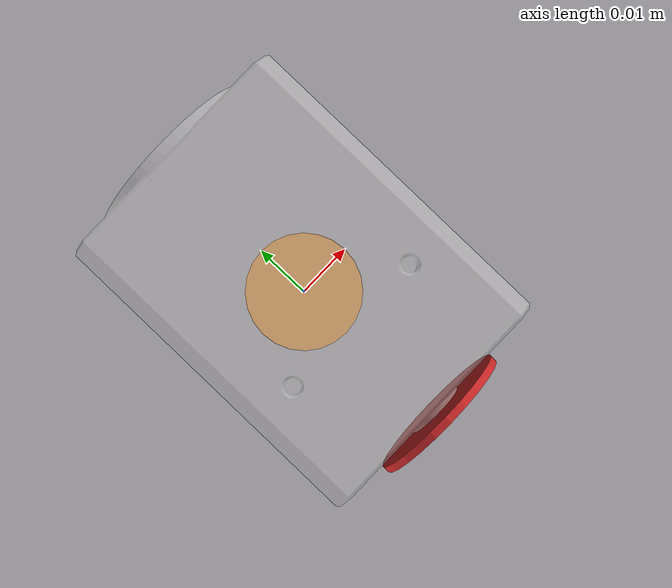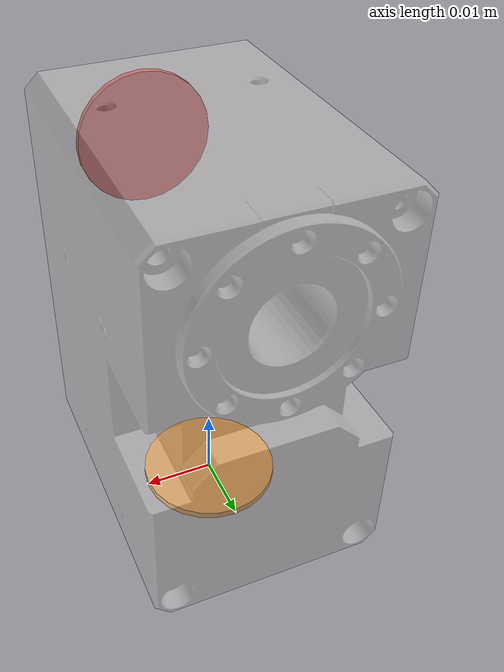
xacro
<?xml version="1.0"?>
<robot name="my_robo" xmlns:xacro="http://ros.org/wiki/xacro">\
	<xacro:include filename="$(find dynamixel_description)/urdf/_XM540.urdf.xacro"/>
	<xacro:include filename="$(find dynamixel_description)/urdf/common_properties.xacro"/>

	<link name="base">
		<visual>
			<origin xyz="0 0 0" rpy="0 0 0"/>
			<geometry>
				<cylinder length="0.001" radius="0.01"/>
			</geometry>
			<material name="orange"/>
		</visual>
	</link>

	<xacro:servo_XM540 parent="base" child="hone" center_child="false" />

	<link name="hone">
		<visual>
			<origin xyz="0 0 0" rpy="0 0 0"/>
			<geometry>
				<cylinder length="0.001" radius="0.01"/>
			</geometry>
			<material name="red"/>
		</visual>
	</link>

	<gazebo reference="base">
		<material>Gazebo/Orange</material>
	</gazebo>

	<gazebo reference="hone">
		<material>Gazebo/Red</material>
	</gazebo>

</robot>

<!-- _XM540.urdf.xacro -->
<!-- あとでdynamixel descriptionを作ってそこにれる -->
<robot name=" dynamixel-XM540" xmlns:xacro="http://ros.org/wiki/xacro">\
	<xacro:macro name="servo_XM540" params="parent child fixed_plane:=bottom center_child:=false">
	   <xacro:include filename="$(find dynamixel_description)/urdf/_XM540.gazebo.xacro"/>

		<xacro:property name="path_to_mesh" value="meshes/XM540-W150-R.dae" />
		<xacro:property name="visual_origin"> <origin xyz="${0} ${0.0386} ${0}" rpy="${-pi/2} 0 ${pi}" /> </xacro:property>
		<xacro:property name="L_x_hone" value="${ 0.0/1000}" /> <!-- unit [m] --> <!-- converted from [mm] -->
		<xacro:property name="L_y_hone" value="${15.5/1000}" /> <!-- unit [m] --> <!-- converted from [mm] -->
		<xacro:property name="L_z_hone" value="${24.5/1000}" /> <!-- unit [m] --> <!-- converted from [mm] -->
		<xacro:property name="W_x" value="${33.5/1000}" /> <!-- unit [m] --> <!-- converted from [mm] -->
		<xacro:property name="W_y" value="${58.5/1000}" /> <!-- unit [m] --> <!-- converted from [mm] -->
		<xacro:property name="W_z" value="${44.0/1000}" /> <!-- unit [m] --> <!-- converted from [mm] -->
		<xacro:property name="no_load_speed" value="${66*(2*pi/60)}" /> <!-- unit [rad/sec] --> <!-- converted from [rev/min] -->
		<xacro:property name="stall_torque"  value="${8.9}" /> <!-- unit [Nm] -->
		<xacro:property name="mass"  value="${165/1000}" /> <!-- unit [kg] --> <!-- converted from [g] -->
		<xacro:property name="inertia"> <!-- unit [kg*m^@] --> <!-- converted from [g*mm^2] -->
			<inertia ixx="${72456.754/1000000000}"  ixy="${-128.62012/1000000000}" ixz="${-174.27089/1000000000}"
			                                        iyy="${ 38622.228/1000000000}" iyz="${-8272.2282/1000000000}"
			                                                                       izz="${ 60707.131/1000000000}" />
		</xacro:property>

		<joint name="XM540_base_joint_" type="fixed">
			<parent link="${parent}"/>
			<child link="dynx_XM540"/>
			<xacro:if value="${fixed_plane == 'bottom'}">
				<origin xyz="${0} ${0} ${W_y/2}" rpy="${pi/2} ${0} ${0}"/> <!-- 回転が先 -->
			</xacro:if>
			<xacro:if value="${fixed_plane == 'top'}">
				<origin xyz="${0} ${0} ${-W_y/2}" rpy="${pi/2} ${0} ${0}"/> <!-- 回転が先 -->
			</xacro:if>
		</joint>

		<link name="dynx_XM540">
			<inertial>
				<origin xyz="0 0 0" rpy="0 0 0"/>
				<mass value="${mass}"/>
				<xacro:insert_block name="inertia"/>
			</inertial>
			<visual>
				<xacro:insert_block name="visual_origin"/>
				<geometry>
					<mesh filename="package://dynamixel_description/${path_to_mesh}" />
				</geometry>
				<material name="gray">
					<color rgba="0.8 0.8 0.8 0.5"/>
				</material>
			</visual>
			<collision>
				<origin xyz="0 0 0" rpy="0 0 0"/>
				<geometry>
					<box size="${W_x} ${W_y} ${W_z}"/>
				</geometry>
			</collision>
		</link>

		<joint name="${child}_joint" type="fixed">
			<parent link="dynx_XM540"/>
			<child link="dynx_XM540_hone"/>
			<origin xyz="${L_x_hone} ${L_y_hone} ${L_z_hone}" rpy="0 0 0"/>
			<axis xyz="0 0 1"/>
			<dynamics damping="0.1"/>
			<limit velocity="${no_load_speed}" effort="${stall_torque}" />
		</joint>

		<link name="dynx_XM540_hone" />

		<joint name="XM540_hone_joint_" type="fixed">
			<parent link="dynx_XM540_hone"/>
			<child link="${child}"/>
			<xacro:if value="${center_child}">
				<origin xyz="0 0 ${-L_z_hone}" rpy="0 0 0"/>
			</xacro:if>
			<xacro:unless value="${center_child}">
				<origin xyz="0 0 0" rpy="0 0 0"/>
			</xacro:unless>
		</joint>

	</xacro:macro>

</robot>
